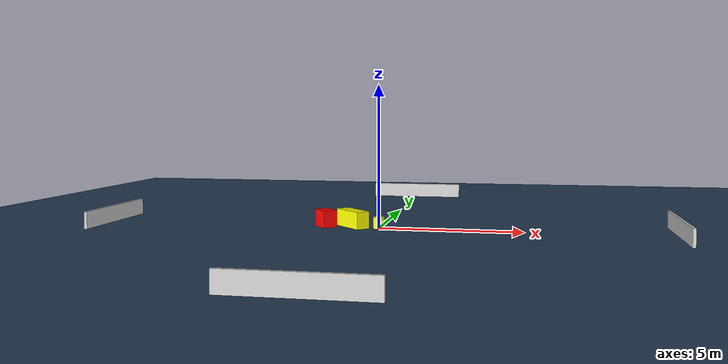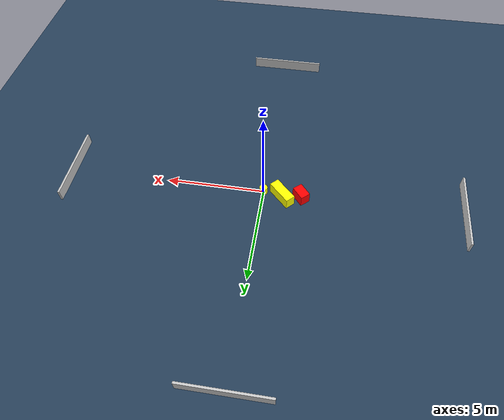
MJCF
<?xml version="1.0" ?>
<mujoco model="generated_environment">
  <option timestep="0.01" integrator="RK4" cone="elliptic"/>
  <default>
    <geom density="1"/>
  </default>
  <asset>
    <texture builtin="gradient" height="3072" name="skybox" rgb1="0.3 0.5 0.7" rgb2="0 0 0" type="skybox" width="512"/>
    <texture builtin="checker" height="300" name="groundplane" rgb1="0.2 0.3 0.4" rgb2="0.1 0.2 0.3" type="2d" width="300"/>
    <material name="groundplane" reflectance="0.2" texrepeat="5 5" texture="groundplane"/>
  </asset>
  <worldbody>
    <light dir="0 0 -1" directional="true" pos="0 0 1.5"/>
    <geom condim="3" friction="0.5 0.005 0.001" material="groundplane" name="floor" pos="0 0 0" size="0 0 0.05" type="plane"/>
    <body name="walls">
      <geom name="wall_1" condim="4" pos="-10.0 0.0 0.3" rgba="0.800000011920929 0.800000011920929 0.800000011920929 1.0" size="0.05 2.0 0.3" type="box"/>
      <geom name="wall_2" condim="4" pos="10.0 0.0 0.3" rgba="0.800000011920929 0.800000011920929 0.800000011920929 1.0" size="0.05 2.0 0.3" type="box"/>
      <geom name="wall_3" condim="4" pos="0.0 -10.0 0.3" rgba="0.800000011920929 0.800000011920929 0.800000011920929 1.0" size="2.0 0.05 0.3" type="box"/>
      <geom name="wall_4" condim="4" pos="0.0 10.0 0.3" rgba="0.800000011920929 0.800000011920929 0.800000011920929 1.0" size="2.0 0.05 0.3" type="box"/>
    </body>
    <body name="robot">
      <joint name="joint_x" type="slide" pos="0 0 0" axis="1 0 0"/>
      <joint name="joint_y" type="slide" pos="0 0 0" axis="0 1 0"/>
      <geom name="robot" type="cylinder" pos="0.0 0.0 0.2" size="0.2 0.2 0.0" mass="5.0" friction="1.0 0.005 0.0001" condim="4" rgba="1.0 1.0 0.0 1.0"/>
    </body>
    <body name="obstacle_1_movable">
      <geom name="obstacle_1_movable" condim="4" pos="-0.9710629379083789 0.19468208349817878 0.3" euler="0 0 45.07737994797239" friction="0.0 0.005 0.001" rgba="1.0 1.0 0.0 1.0" size="0.24848979180426883 0.6708311417802759 0.3" type="box" mass="0.1"/>
      <joint type="free"/>
    </body>
    <body name="obstacle_2_static">
      <geom name="obstacle_2_static" condim="4" pos="-1.92039025424381 0.11225307911735025 0.3" euler="0 0 129.97222509333236" friction="0.0 0.005 0.001" rgba="1.0 0.0 0.0 1.0" size="0.3714545841434805 0.253287303510355 0.3" type="box"/>
    </body>
  </worldbody>
  <actuator>
    <motor name="actuator_x" joint="joint_x" gear="1" ctrlrange="-1 1"/>
    <motor name="actuator_y" joint="joint_y" gear="1" ctrlrange="-1 1"/>
  </actuator>
</mujoco>
